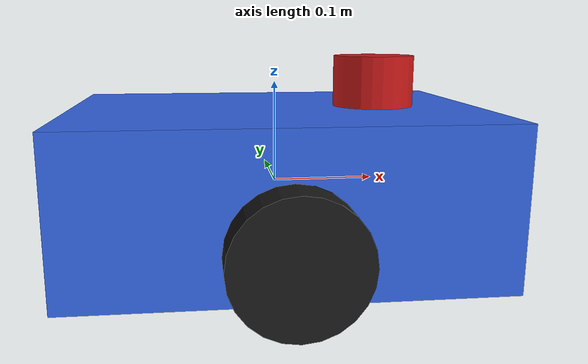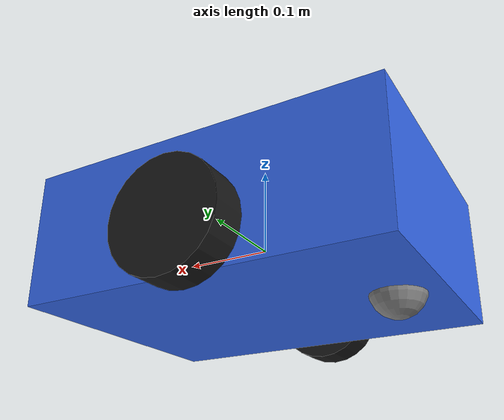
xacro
<?xml version="1.0"?>
<robot xmlns:xacro="http://www.ros.org/wiki/xacro" name="diff_robot">

  <xacro:arg name="robot_name" default="robot"/>
  <xacro:arg name="prefix" default=""/>
  <xacro:property name="robot_name" value="$(arg robot_name)"/>
  <xacro:property name="prefix" value="$(arg prefix)"/>

  <!-- ===== 车体 ===== -->
  <link name="${prefix}base_link">
    <visual>
      <geometry><box size="0.4 0.3 0.15"/></geometry>
      <material name="blue"><color rgba="0.2 0.4 0.9 1"/></material>
    </visual>
    <collision>
      <geometry><box size="0.4 0.3 0.15"/></geometry>
    </collision>
    <inertial>
      <mass value="5.0"/>
      <inertia ixx="0.1" iyy="0.1" izz="0.1" ixy="0" ixz="0" iyz="0"/>
    </inertial>
  </link>

  <!-- ===== 左轮 ===== -->
  <link name="${prefix}left_wheel">
    <visual>
      <origin xyz="0 0 0" rpy="1.5707 0 0"/>
      <geometry><cylinder radius="0.06" length="0.04"/></geometry>
      <material name="black"><color rgba="0.1 0.1 0.1 1"/></material>
    </visual>
    <collision>
      <origin xyz="0 0 0" rpy="1.5707 0 0"/>
      <geometry><cylinder radius="0.06" length="0.04"/></geometry>
    </collision>
    <inertial>
      <mass value="0.2"/>
      <inertia ixx="0.001" iyy="0.001" izz="0.001" ixy="0" ixz="0" iyz="0"/>
    </inertial>
  </link>
  <joint name="${prefix}left_wheel_joint" type="continuous">
    <parent link="${prefix}base_link"/>
    <child link="${prefix}left_wheel"/>
    <origin xyz="0 0.17 -0.03" rpy="0 0 0"/>
    <axis xyz="0 1 0"/>
  </joint>

  <!-- ===== 右轮 ===== -->
  <link name="${prefix}right_wheel">
    <visual>
      <origin xyz="0 0 0" rpy="1.5707 0 0"/>
      <geometry><cylinder radius="0.06" length="0.04"/></geometry>
      <material name="black"><color rgba="0.1 0.1 0.1 1"/></material>
    </visual>
    <collision>
      <origin xyz="0 0 0" rpy="1.5707 0 0"/>
      <geometry><cylinder radius="0.06" length="0.04"/></geometry>
    </collision>
    <inertial>
      <mass value="0.2"/>
      <inertia ixx="0.001" iyy="0.001" izz="0.001" ixy="0" ixz="0" iyz="0"/>
    </inertial>
  </link>
  <joint name="${prefix}right_wheel_joint" type="continuous">
    <parent link="${prefix}base_link"/>
    <child link="${prefix}right_wheel"/>
    <origin xyz="0 -0.17 -0.03" rpy="0 0 0"/>
    <axis xyz="0 1 0"/>
  </joint>

  <!-- ===== 万向轮 ===== -->
  <link name="${prefix}caster_wheel">
    <visual>
      <geometry><sphere radius="0.03"/></geometry>
      <material name="gray"><color rgba="0.5 0.5 0.5 1"/></material>
    </visual>
    <collision>
      <geometry><sphere radius="0.03"/></geometry>
    </collision>
    <inertial>
      <mass value="0.1"/>
      <inertia ixx="0.0001" iyy="0.0001" izz="0.0001" ixy="0" ixz="0" iyz="0"/>
    </inertial>
  </link>
  <joint name="${prefix}caster_joint" type="fixed">
    <parent link="${prefix}base_link"/>
    <child link="${prefix}caster_wheel"/>
    <origin xyz="-0.15 0 -0.07" rpy="0 0 0"/>
  </joint>

  <!-- ===== 雷达 ===== -->
  <link name="${prefix}lidar_link">
    <visual>
      <geometry><cylinder radius="0.04" length="0.05"/></geometry>
      <material name="red"><color rgba="0.8 0.1 0.1 1"/></material>
    </visual>
    <collision>
      <geometry><cylinder radius="0.04" length="0.05"/></geometry>
    </collision>
    <inertial>
      <mass value="0.1"/>
      <inertia ixx="0.0001" iyy="0.0001" izz="0.0001" ixy="0" ixz="0" iyz="0"/>
    </inertial>
  </link>
  <joint name="${prefix}lidar_joint" type="fixed">
    <parent link="${prefix}base_link"/>
    <child link="${prefix}lidar_link"/>
    <origin xyz="0.1 0 0.10" rpy="0 0 0"/>
  </joint>

  <!-- ===== Gazebo 插件：差速驱动 ===== -->
  <gazebo>
    <plugin name="diff_drive" filename="libgazebo_ros_diff_drive.so">
      <ros>
        <namespace>/${robot_name}</namespace>
        <remapping>cmd_vel:=cmd_vel</remapping>
        <remapping>odom:=odom</remapping>
      </ros>
      <update_rate>30</update_rate>
      <left_joint>${prefix}left_wheel_joint</left_joint>
      <right_joint>${prefix}right_wheel_joint</right_joint>
      <wheel_separation>0.34</wheel_separation>
      <wheel_diameter>0.12</wheel_diameter>
      <max_wheel_torque>20</max_wheel_torque>
      <max_wheel_acceleration>1.0</max_wheel_acceleration>
      <publish_odom>true</publish_odom>
      <publish_odom_tf>true</publish_odom_tf>
      <publish_wheel_tf>true</publish_wheel_tf>
      <odometry_frame>${prefix}odom</odometry_frame>
      <robot_base_frame>${prefix}base_link</robot_base_frame>
    </plugin>
  </gazebo>

  <!-- ===== Gazebo 插件：激光雷达 ===== -->
  <gazebo reference="${prefix}lidar_link">
    <sensor type="ray" name="lidar">
      <pose>0 0 0 0 0 0</pose>
      <visualize>true</visualize>
      <update_rate>10</update_rate>
      <ray>
        <scan>
          <horizontal>
            <samples>360</samples>
            <resolution>1</resolution>
            <min_angle>-3.14159</min_angle>
            <max_angle>3.14159</max_angle>
          </horizontal>
        </scan>
        <range>
          <min>0.10</min>
          <max>10.0</max>
          <resolution>0.01</resolution>
        </range>
      </ray>
      <plugin name="lidar_controller" filename="libgazebo_ros_ray_sensor.so">
        <ros>
          <namespace>/${robot_name}</namespace>
          <remapping>~/out:=scan</remapping>
        </ros>
        <output_type>sensor_msgs/LaserScan</output_type>
        <frame_name>${prefix}lidar_link</frame_name>
      </plugin>
    </sensor>
  </gazebo>

</robot>
